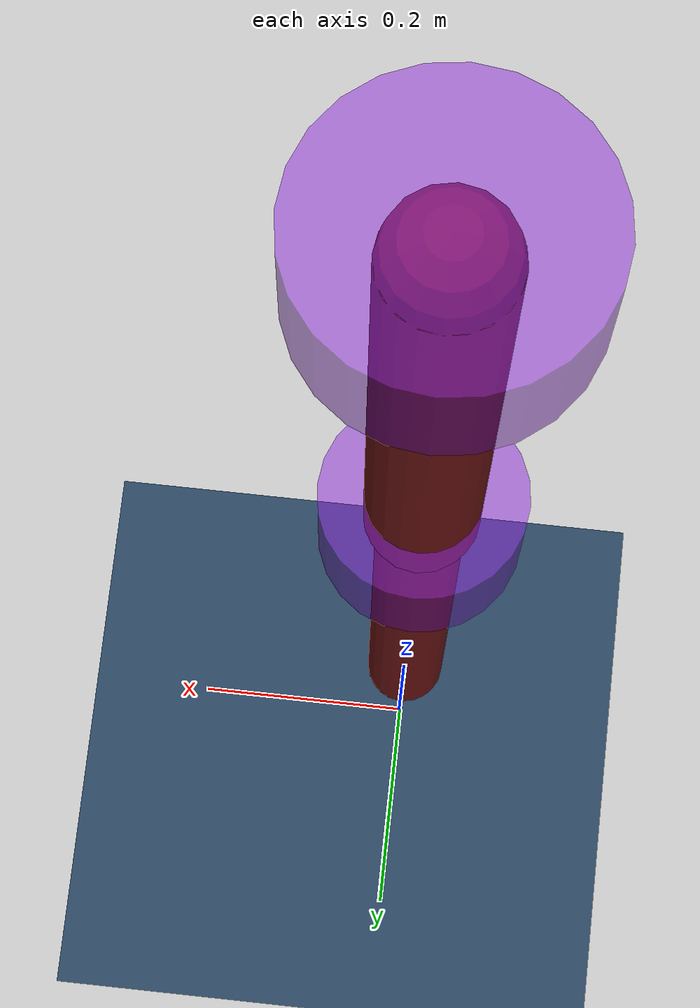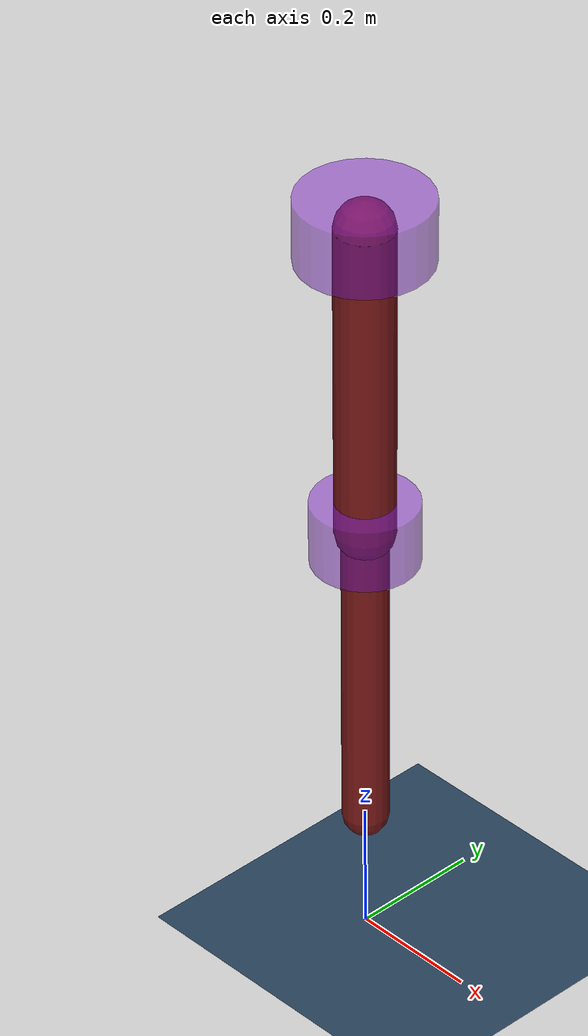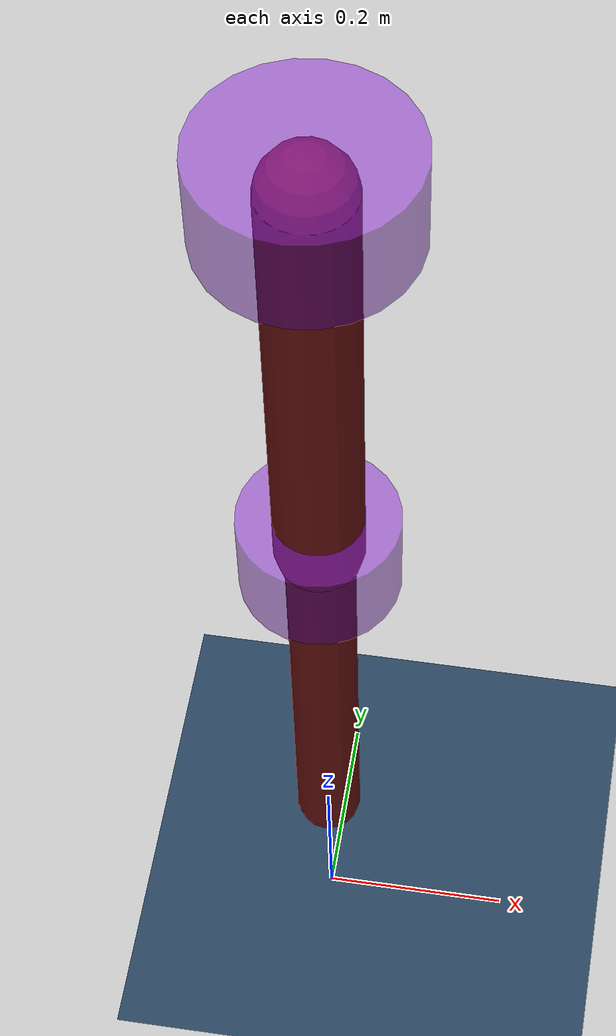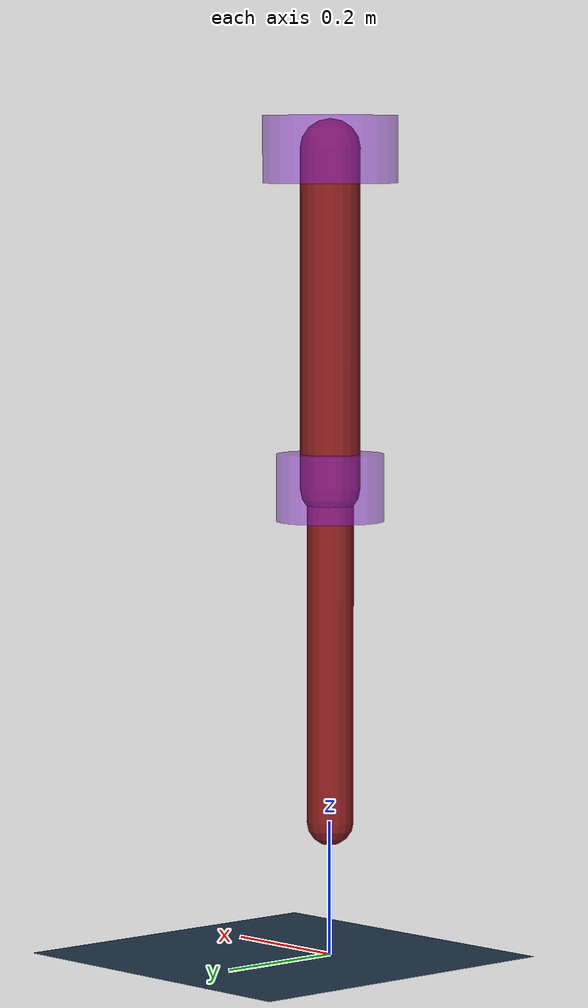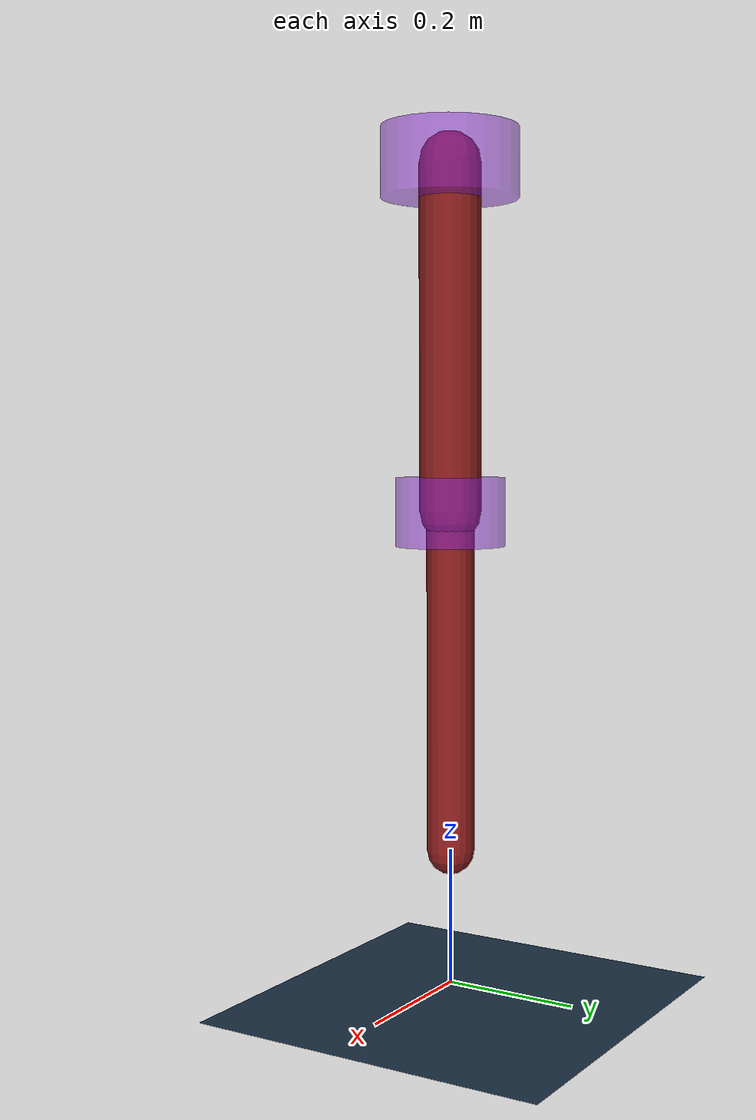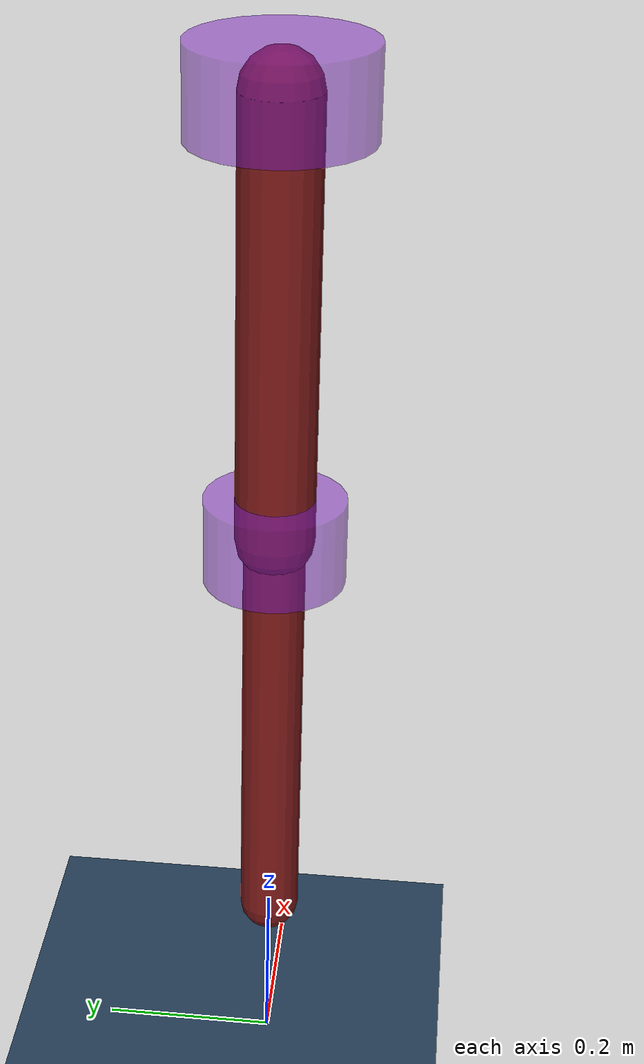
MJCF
<mujoco model="arm">
  <compiler autolimits="true"/>
  <option timestep="0.005" iterations="50" solver="Newton" tolerance="1e-10"/>

  <visual>
    <map force="0.1" zfar="30"/>
    <rgba haze="0.15 0.25 0.35 1"/>
    <global offwidth="2560" offheight="1440" elevation="20" azimuth="120"/>
  </visual>

  <statistic center="0 0 0.7"/>

  <asset>
    <texture type="skybox" builtin="gradient" rgb1=".3 .5 .7" rgb2="0 0 0" width="32" height="512"/>
    <texture name="body" type="cube" builtin="flat" mark="cross" width="128" height="128" rgb1="0.8 0.6 0.4" rgb2="0.8 0.6 0.4" markrgb="1 1 1" random="0.01"/>
    <material name="body" texture="body" texuniform="true" rgba="0.8 0.6 .4 1"/>
    <texture name="grid" type="2d" builtin="checker" width="512" height="512" rgb1=".1 .2 .3" rgb2=".2 .3 .4"/>
    <material name="grid" texture="grid" texrepeat="1 1" texuniform="true" reflectance=".2"/>
  </asset>

  <worldbody>
    <geom name="floor" size="0 0 .05" type="plane" material="grid" condim="3"/>

    <light name="spotlight" mode="targetbodycom" target="arm" diffuse=".8 .8 .8" specular="0.3 0.3 0.3" pos="0 -6 4" cutoff="30"/>

    <body name="arm" pos="0 0 1.2">
      <geom name="upper arm" type="capsule" size="0.045" fromto="0 0 0  0 0 -0.5" rgba=".5 .1 .1 1" condim="6" friction=".6" solimp=".7 .8 .003" solref=".015 1"  mass="0.250"/>

      <joint name="shoulder" type="hinge" solreffriction=".15 1" axis="0 1 0" frictionloss="0.1"/>

      <geom name="shoulder" type="cylinder" pos="0 0 0" size=".1 .05" rgba=".5 .1 .8 .5" mass="0.1" group="1"/>

      <body pos="0 0 -0.5">
        <geom name="forearm" type="capsule" size="0.035" fromto="0 0 0  0 0 -0.5" rgba=".5 .1 .1 1" condim="6" friction=".6" solimp=".7 .8 .003" solref=".015 1" mass="0.250"/>

        <joint name="elbow" type="hinge" solreffriction=".15 1" axis="0 1 0" frictionloss="0.1"/>

        <geom name="elbow" type="cylinder" pos="0 0 0" size=".08 .05" rgba=".5 .1 .8 .5" mass="0.1" group="1"/>
      </body>
    </body>

  </worldbody>

  <actuator>
    <position name="shoulder_p" joint="shoulder" ctrlrange="-3.1415 3.1415" kp="3"/>
    <position name="elbow_p" joint="elbow" ctrlrange="-3.1415 3.1415" kp="3"/>
    <velocity name="shoulder_v" joint="shoulder" ctrlrange="-3.1415 3.1415" kv="0.9"/>
    <velocity name="elbow_v" joint="elbow" ctrlrange="-3.1415 3.1415" kv="0.9"/>
  </actuator>

</mujoco>
